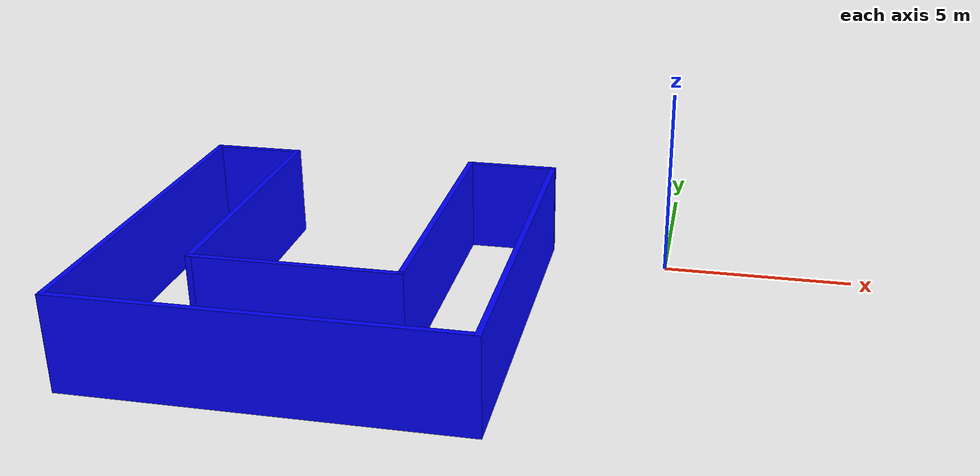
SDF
<?xml version='1.0'?>
<sdf version='1.6'>
  <model name='mybuilding'>
    <pose frame=''>-8.22318 -4.26921 0 0 -0 0</pose>
    <link name='Wall_10'>
      <collision name='Wall_10_Collision'>
        <geometry>
          <box>
            <size>10 0.15 2.5</size>
          </box>
        </geometry>
        <pose frame=''>0 0 1.25 0 -0 0</pose>
      </collision>
      <visual name='Wall_10_Visual'>
        <pose frame=''>0 0 1.25 0 -0 0</pose>
        <geometry>
          <box>
            <size>10 0.15 2.5</size>
          </box>
        </geometry>
        <material>
          <script>
            <uri>file://media/materials/scripts/gazebo.material</uri>
            <name>Gazebo/Grey</name>
          </script>
          <ambient>0 0 1 1</ambient>
        </material>
        <meta>
          <layer>0</layer>
        </meta>
      </visual>
      <pose frame=''>4.925 0 0 0 -0 1.57076</pose>
    </link>
    <link name='Wall_11'>
      <collision name='Wall_11_Collision'>
        <geometry>
          <box>
            <size>2.5 0.15 2.5</size>
          </box>
        </geometry>
        <pose frame=''>0 0 1.25 0 -0 0</pose>
      </collision>
      <visual name='Wall_11_Visual'>
        <pose frame=''>0 0 1.25 0 -0 0</pose>
        <geometry>
          <box>
            <size>2.5 0.15 2.5</size>
          </box>
        </geometry>
        <material>
          <script>
            <uri>file://media/materials/scripts/gazebo.material</uri>
            <name>Gazebo/Grey</name>
          </script>
          <ambient>0 0 1 1</ambient>
        </material>
        <meta>
          <layer>0</layer>
        </meta>
      </visual>
      <pose frame=''>3.75018 4.92521 0 0 -0 3.14159</pose>
    </link>
    <link name='Wall_13'>
      <collision name='Wall_13_Collision'>
        <geometry>
          <box>
            <size>7.5 0.15 2.5</size>
          </box>
        </geometry>
        <pose frame=''>0 0 1.25 0 -0 0</pose>
      </collision>
      <visual name='Wall_13_Visual'>
        <pose frame=''>0 0 1.25 0 -0 0</pose>
        <geometry>
          <box>
            <size>7.5 0.15 2.5</size>
          </box>
        </geometry>
        <material>
          <script>
            <uri>file://media/materials/scripts/gazebo.material</uri>
            <name>Gazebo/Grey</name>
          </script>
          <ambient>0 0 1 1</ambient>
        </material>
        <meta>
          <layer>0</layer>
        </meta>
      </visual>
      <pose frame=''>-2.575 1.25 0 0 0 -1.57075</pose>
    </link>
    <link name='Wall_14'>
      <collision name='Wall_14_Collision'>
        <geometry>
          <box>
            <size>5.3 0.15 2.5</size>
          </box>
        </geometry>
        <pose frame=''>0 0 1.25 0 -0 0</pose>
      </collision>
      <visual name='Wall_14_Visual'>
        <pose frame=''>0 0 1.25 0 -0 0</pose>
        <geometry>
          <box>
            <size>5.3 0.15 2.5</size>
          </box>
        </geometry>
        <material>
          <script>
            <uri>file://media/materials/scripts/gazebo.material</uri>
            <name>Gazebo/Grey</name>
          </script>
          <ambient>0 0 1 1</ambient>
        </material>
        <meta>
          <layer>0</layer>
        </meta>
      </visual>
      <pose frame=''>0.00018 -2.4248 0 0 -0 0</pose>
    </link>
    <link name='Wall_15'>
      <collision name='Wall_15_Collision'>
        <geometry>
          <box>
            <size>7.5 0.15 2.5</size>
          </box>
        </geometry>
        <pose frame=''>0 0 1.25 0 -0 0</pose>
      </collision>
      <visual name='Wall_15_Visual'>
        <pose frame=''>0 0 1.25 0 -0 0</pose>
        <geometry>
          <box>
            <size>7.5 0.15 2.5</size>
          </box>
        </geometry>
        <material>
          <script>
            <uri>file://media/materials/scripts/gazebo.material</uri>
            <name>Gazebo/Grey</name>
          </script>
          <ambient>0 0 1 1</ambient>
        </material>
        <meta>
          <layer>0</layer>
        </meta>
      </visual>
      <pose frame=''>2.57518 1.25021 0 0 -0 1.5708</pose>
    </link>
    <link name='Wall_7'>
      <collision name='Wall_7_Collision'>
        <geometry>
          <box>
            <size>2.5 0.15 2.5</size>
          </box>
        </geometry>
        <pose frame=''>0 0 1.25 0 -0 0</pose>
      </collision>
      <visual name='Wall_7_Visual'>
        <pose frame=''>0 0 1.25 0 -0 0</pose>
        <geometry>
          <box>
            <size>2.5 0.15 2.5</size>
          </box>
        </geometry>
        <material>
          <script>
            <uri>file://media/materials/scripts/gazebo.material</uri>
            <name>Gazebo/Grey</name>
          </script>
          <ambient>0 0 1 1</ambient>
        </material>
        <meta>
          <layer>0</layer>
        </meta>
      </visual>
      <pose frame=''>-3.75018 4.92479 0 0 -0 3.14159</pose>
    </link>
    <link name='Wall_8'>
      <collision name='Wall_8_Collision'>
        <geometry>
          <box>
            <size>10 0.15 2.5</size>
          </box>
        </geometry>
        <pose frame=''>0 0 1.25 0 -0 0</pose>
      </collision>
      <visual name='Wall_8_Visual'>
        <pose frame=''>0 0 1.25 0 -0 0</pose>
        <geometry>
          <box>
            <size>10 0.15 2.5</size>
          </box>
        </geometry>
        <material>
          <script>
            <uri>file://media/materials/scripts/gazebo.material</uri>
            <name>Gazebo/Grey</name>
          </script>
          <ambient>0 0 1 1</ambient>
        </material>
        <meta>
          <layer>0</layer>
        </meta>
      </visual>
      <pose frame=''>-4.92518 -0.000205 0 0 0 -1.5708</pose>
    </link>
    <link name='Wall_9'>
      <collision name='Wall_9_Collision'>
        <geometry>
          <box>
            <size>10 0.15 2.5</size>
          </box>
        </geometry>
        <pose frame=''>0 0 1.25 0 -0 0</pose>
      </collision>
      <visual name='Wall_9_Visual'>
        <pose frame=''>0 0 1.25 0 -0 0</pose>
        <geometry>
          <box>
            <size>10 0.15 2.5</size>
          </box>
        </geometry>
        <material>
          <script>
            <uri>file://media/materials/scripts/gazebo.material</uri>
            <name>Gazebo/Grey</name>
          </script>
          <ambient>0 0 1 1</ambient>
        </material>
        <meta>
          <layer>0</layer>
        </meta>
      </visual>
      <pose frame=''>-0.000182 -4.92521 0 0 -0 0</pose>
    </link>
    <static>1</static>
  </model>
</sdf>
